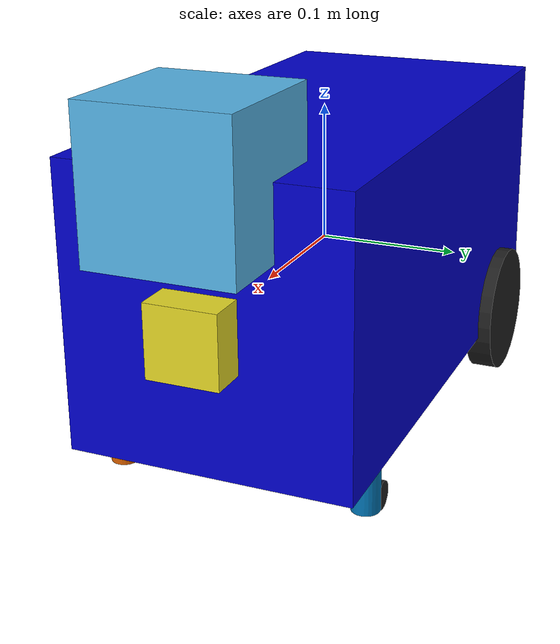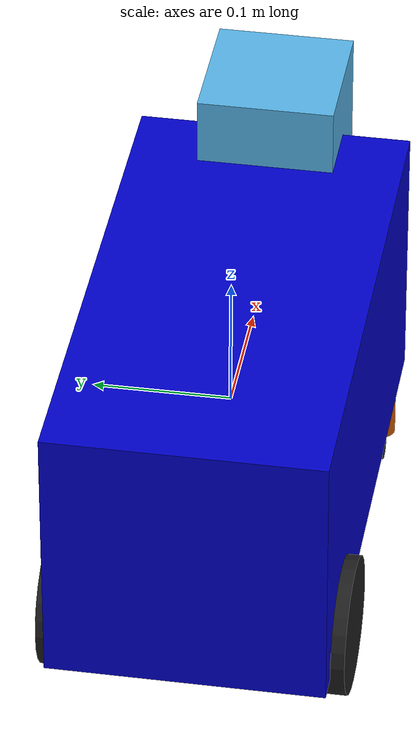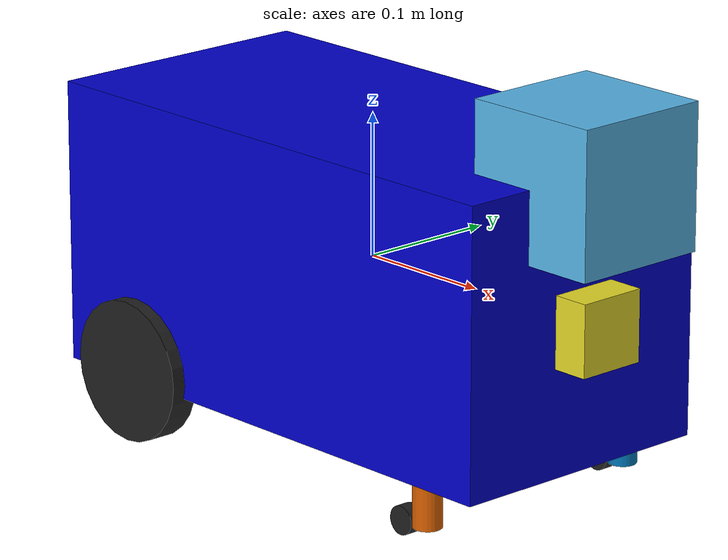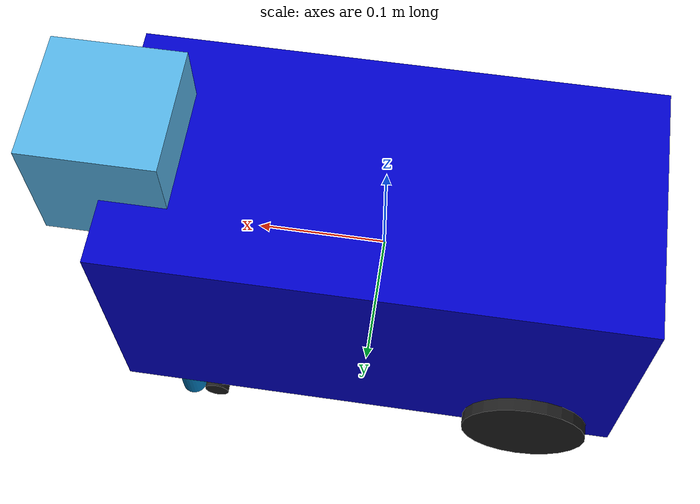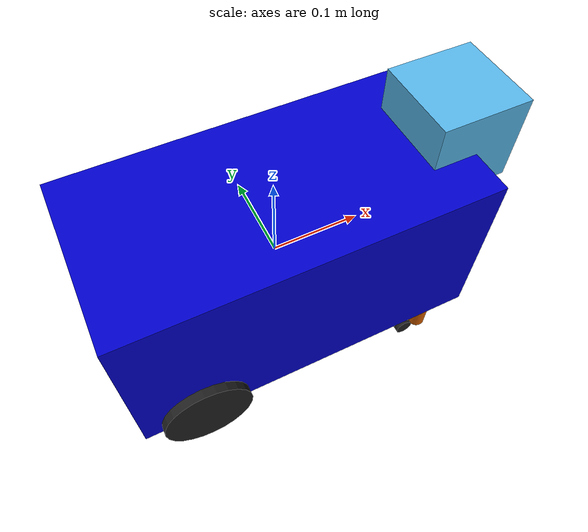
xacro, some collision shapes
<?xml version = '1.0'?>

<robot name = "ozdemre_bot" xmlns:xacro="http://www.ros.org/wiki/xacro">

<xacro:include filename="$(find ozdemre_bot)/urdf/udacity_bot.gazebo"/>
<xacro:include filename="$(find ozdemre_bot)/urdf/materials.xacro" />
<xacro:include filename="$(find ozdemre_bot)/urdf/ozdemre_bot_sim.gazebo" />

	<link name="robot_footprint"></link>

	<joint name="robot_footprint_joint" type="fixed">
		<origin xyz="0 0 0" rpy="0 0 0" />
		<parent link="robot_footprint" />
		<child link="chasis" />
	</joint>

	<link name="chasis">
		<pose>0 0 0.4 0 0 0</pose>

		<inertial>
			<mass value="5.0" />
			<origin xyz="0 0 0" rpy="0 0 0" />
			<inertia
				ixx="0.1" ixy="0" ixz="0"
				iyy="0.1" iyz="0"
				izz="0.1"
			/>
		</inertial>

		<collision name="chasis_collision">
			<origin xyz="0 0 0" rpy="0 0 0" />
			<geometry>
				<box size="0.4 0.2 0.2" />
			</geometry>
		</collision>

		<visual name="chasis_visual">
			<origin xyz="0 0 0" rpy="0 0 0" />
			<geometry>
				<box size="0.4 0.2 0.2" />
			</geometry>
      <material
        name="blue"/>
		</visual>

	</link>

	<link name='left_wheel'>
    <pose>0 0 0 0 0 0</pose>

    <inertial>
      <mass value="1.0"/>
      <origin xyz="0 0 0" rpy="0 1.5707 1.5707"/>
      <inertia
          ixx="0.1" ixy="0" ixz="0"
          iyy="0.1" iyz="0"
          izz="0.1"
      />
    </inertial>

    <collision name='left_wheel_collision'>
      <origin xyz="0 0 0" rpy="0 1.5707 1.5707"/>
      <geometry>
        <cylinder radius="0.05" length="0.02"/>
      </geometry>
    </collision>

    <visual name='left_wheel_visual'>
      <origin xyz="0 0 0" rpy="0 1.5707 1.5707"/>
      <geometry>
        <cylinder radius="0.05" length="0.02"/>
      </geometry>
    </visual>

  </link>

	<link name='right_wheel'>
    <pose>0 0 0 0 0 0</pose>

    <inertial>
      <mass value="1.0"/>
      <origin xyz="0 0 0" rpy="0 1.5707 1.5707"/>
      <inertia
          ixx="0.1" ixy="0" ixz="0"
          iyy="0.1" iyz="0"
          izz="0.1"
      />
    </inertial>

    <collision name='right_wheel_collision'>
      <origin xyz="0 0 0" rpy="0 1.5707 1.5707"/>
      <geometry>
        <cylinder radius="0.05" length="0.02"/>
      </geometry>
    </collision>

    <visual name='right_wheel_visual'>
      <origin xyz="0 0 0" rpy="0 1.5707 1.5707"/>
      <geometry>
        <cylinder radius="0.05" length="0.02"/>
      </geometry>
    </visual>

  </link>

	<link name='left_caster_mid'>
    <pose>0 0 0 0 0 0</pose>

    <inertial>
      <mass value="0.1"/>
      <origin xyz="0 0 0" rpy="0 0 0"/>
      <inertia
          ixx="0.001" ixy="0" ixz="0"
          iyy="0.001" iyz="0"
          izz="0.001"
      />
    </inertial>

    <collision name='left_caster_mid_collision'>
      <origin xyz="0 0 0" rpy="0 0 0"/>
      <geometry>
        <cylinder radius="0.01" length="0.03"/>
      </geometry>
    </collision>

    <visual name='left_caster_mid_visual'>
      <origin xyz="0 0 0" rpy="0 0 0"/>
      <geometry>
        <cylinder radius="0.01" length="0.03"/>
      </geometry>
    </visual>

  </link>

	<link name='right_caster_mid'>
    <pose>0 0 0 0 0 0</pose>

    <inertial>
      <mass value="0.1"/>
      <origin xyz="0 0 0" rpy="0 0 0"/>
      <inertia
          ixx="0.001" ixy="0" ixz="0"
          iyy="0.001" iyz="0"
          izz="0.001"
      />
    </inertial>

    <collision name='right_caster_mid_collision'>
      <origin xyz="0 0 0" rpy="0 0 0"/>
      <geometry>
        <cylinder radius="0.01" length="0.03"/>
      </geometry>
    </collision>

    <visual name='right_caster_mid_visual'>
      <origin xyz="0 0 0" rpy="0 0 0"/>
      <geometry>
        <cylinder radius="0.01" length="0.03"/>
      </geometry>
    </visual>

  </link>

	<link name='left_caster_wheel'>
    <pose>0 0 0 0 0 0</pose>

    <inertial>
      <mass value="0.05"/>
      <origin xyz="0 0 0" rpy="0 1.5707 1.5707"/>
      <inertia
          ixx="0.001" ixy="0" ixz="0"
          iyy="0.001" iyz="0"
          izz="0.001"
      />
    </inertial>

    <collision name='left_caster_wheel_collision'>
      <origin xyz="0 0 0" rpy="0 1.5707 1.5707"/>
      <geometry>
        <cylinder radius="0.01" length="0.01"/>
      </geometry>
    </collision>

    <visual name='left_caster_wheel_visual'>
      <origin xyz="0 0 0" rpy="0 1.5707 1.5707"/>
      <geometry>
        <cylinder radius="0.01" length="0.01"/>
      </geometry>
    </visual>

  </link>

	<link name='right_caster_wheel'>
    <pose>0 0 0 0 0 0</pose>

    <inertial>
      <mass value="0.05"/>
      <origin xyz="0 0 0" rpy="0 1.5707 1.5707"/>
      <inertia
          ixx="0.001" ixy="0" ixz="0"
          iyy="0.001" iyz="0"
          izz="0.001"
      />
    </inertial>

    <collision name='right_caster_wheel_collision'>
      <origin xyz="0 0 0" rpy="0 1.5707 1.5707"/>
      <geometry>
        <cylinder radius="0.01" length="0.01"/>
      </geometry>
    </collision>

    <visual name='right_caster_wheel_visual'>
      <origin xyz="0 0 0" rpy="0 1.5707 1.5707"/>
      <geometry>
        <cylinder radius="0.01" length="0.01"/>
      </geometry>
    </visual>

  </link>

  <link name='camera'>
    <pose>0 0 0 0 0 0</pose>

    <inertial>
      <mass value="0.1"/>
      <origin xyz="0 0 0" rpy="0 0 0"/>
      <inertia
          ixx="1e-6" ixy="0" ixz="0"
          iyy="1e-6" iyz="0"
          izz="1e-6"
      />
    </inertial>

    <collision name='camera_collision'>
      <origin xyz="0 0 0" rpy="0 0 0"/>
      <geometry>
		<box size="0.05 0.05 0.05"/>
      </geometry>
    </collision>

    <visual name='camera_visual'>
      <origin xyz="0 0 0" rpy="0 0 0"/>
      <geometry>
		<box size="0.05 0.05 0.05"/>
      </geometry>
    </visual>

  </link>

  <link name='hokuyo'>
    <pose>0 0 0 0 0 0</pose>

    <inertial>
      <mass value="0.1"/>
      <origin xyz="0 0 0" rpy="0 0 0"/>
      <inertia
          ixx="1e-6" ixy="0" ixz="0"
          iyy="1e-6" iyz="0"
          izz="1e-6"
      />
    </inertial>

    <collision name='hokuyo_collision'>
      <origin xyz="0 0 0" rpy="0 0 0"/>
      <geometry>
		<box size="0.1 0.1 0.1"/>
      </geometry>
    </collision>

    <visual name='hokuyo_visual'>
      <origin xyz="0 0 0" rpy="0 0 0"/>
      <geometry>
		<mesh filename="package://ozdemre_bot/meshes/hokuyo.dae"/>
      </geometry>
    </visual>

  </link>

	<joint type="continuous" name="left_wheel_hinge">
    <origin xyz="-0.13 0.1 -0.09" rpy="0 0 0"/>
    <child link="left_wheel"/>
    <parent link="chasis"/>
    <axis xyz="0 1 0" rpy="0 0 0"/>
    <limit effort="10000" velocity="1000"/>
    <dynamics damping="1.0" friction="1.0"/>
  </joint>

  <joint type="continuous" name="right_wheel_hinge">
    <origin xyz="-0.13 -0.1 -0.09" rpy="0 0 0"/>
    <child link="right_wheel"/>
    <parent link="chasis"/>
    <axis xyz="0 1 0" rpy="0 0 0"/>
    <limit effort="10000" velocity="1000"/>
    <dynamics damping="1.0" friction="1.0"/>
  </joint>

  <joint type="continuous" name="left_caster_mid_hinge">
    <origin xyz="0.15 0.09 -0.115" rpy="0 0 0"/>
    <child link="left_caster_mid"/>
    <parent link="chasis"/>
    <axis xyz="0 0 1" rpy="0 0 0"/>
  </joint>

  <joint type="continuous" name="right_caster_mid_hinge">
    <origin xyz="0.15 -0.09 -0.115" rpy="0 0 0"/>
    <child link="right_caster_mid"/>
    <parent link="chasis"/>
    <axis xyz="0 0 1" rpy="0 0 0"/>
  </joint>

	<joint type="continuous" name="left_caster_wheel_hinge">
    <origin xyz="-0.02 0 -0.015" rpy="0 0 0"/>
    <child link="left_caster_wheel"/>
    <parent link="left_caster_mid"/>
    <axis xyz="0 1 0" rpy="0 0 0"/>
  </joint>

	<joint type="continuous" name="right_caster_wheel_hinge">
    <origin xyz="-0.02 0 -0.015" rpy="0 0 0"/>
    <child link="right_caster_wheel"/>
    <parent link="right_caster_mid"/>
    <axis xyz="0 1 0" rpy="0 0 0"/>
  </joint>

  <joint type="fixed" name="camera_joint">
    <origin xyz="0.201 0 0" rpy="0 0 0"/>
    <child link="camera"/>
    <parent link="chasis"/>
  </joint>

  <joint type="fixed" name="hokuyo_joint">
    <origin xyz="0.2 0 0.1" rpy="0 0 0"/>
    <child link="hokuyo"/>
    <parent link="chasis"/>
  </joint>

</robot>

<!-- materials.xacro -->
<robot xmlns:xacro="http://www.ros.org/wiki/xacro">

  <material name="black">
    <color rgba="0.0 0.0 0.0 1.0"/>
  </material>

  <material name="blue">
    <color rgba="0.0 0.0 0.8 1.0"/>
  </material>

  <material name="green">
    <color rgba="0.0 0.8 0.0 1.0"/>
  </material>

  <material name="grey">
    <color rgba="0.2 0.2 0.2 1.0"/>
  </material>

  <material name="grey_transparent">
    <color rgba="0.2 0.2 0.2 0.75"/>
  </material>

  <material name="orange">
    <color rgba="1 0.42 0.03 1.0"/>
  </material>

  <material name="brown">
    <color rgba="0.87 0.8118 0.76 1.0"/>
  </material>

  <material name="red">
    <color rgba="0.8 0.0 0.0 1.0"/>
  </material>

  <material name="white">
    <color rgba="1.0 1.0 1.0 1.0"/>
  </material>

  <material name="wheel_green">
    <color rgba="0.79216 0.81961 0.93333 1"/>
  </material>

  <material name="yellow">
    <color rgba="0.75294 0.75294 0.75294 1" />
  </material>

</robot>
